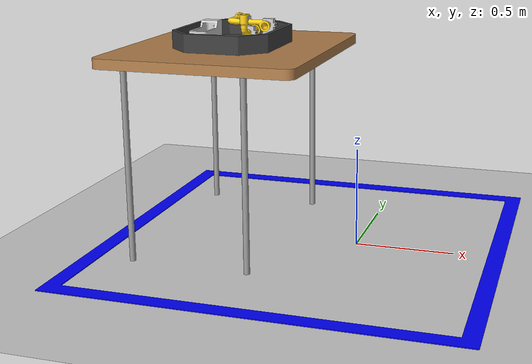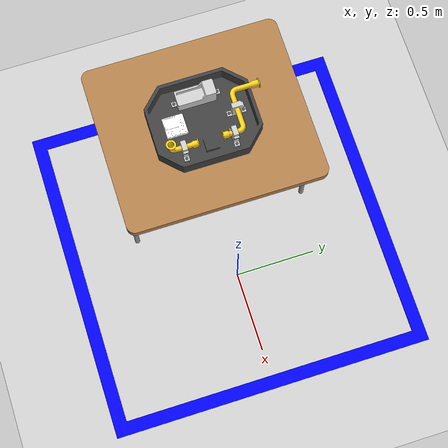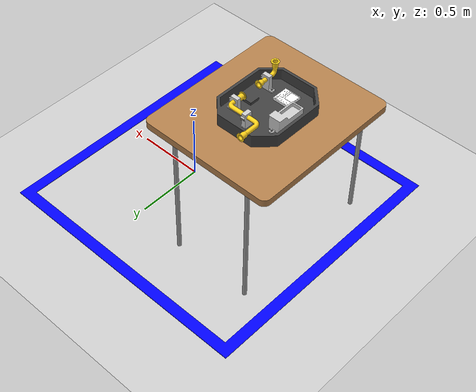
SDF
<sdf version="1.6">
 <world name="default">
  <light name="sun" type="directional">
   <pose>0 0 10 0 -0 0</pose>
   <diffuse>0.8 0.8 0.8 1</diffuse>
   <specular>0.2 0.2 0.2 1</specular>
   <attenuation>
    <range>1000</range>
    <constant>0.9</constant>
    <linear>0.01</linear>
    <quadratic>0.001</quadratic>
   </attenuation>
   <direction>-0.5 0.1 -0.9</direction>
  </light>
  <model name="ground_plane">
   <static>1</static>
   <link name="link">
    <collision name="collision">
     <geometry><plane><normal>0 0 1</normal><size>100 100</size></plane></geometry>
     <surface>
      <contact><collide_bitmask>65535</collide_bitmask></contact>
      <friction><ode><mu>100</mu><mu2>50</mu2></ode></friction>
     </surface>
    </collision>
    <visual name="visual">
     <cast_shadows>0</cast_shadows>
     <geometry><plane><normal>0 0 1</normal><size>100 100</size></plane></geometry>
     <material>
      <script><uri>file://media/materials/scripts/gazebo.material</uri><name>Gazebo/Grey</name></script>
     </material>
    </visual>
   </link>
  </model>
  <gravity>0 0 -9.8</gravity>
  <magnetic_field>6e-06 2.3e-05 -4.2e-05</magnetic_field>
  <atmosphere type="adiabatic"/>
  <physics name="default_physics" default="0" type="ode">
   <max_step_size>0.001</max_step_size>
   <real_time_factor>1</real_time_factor>
   <real_time_update_rate>1000</real_time_update_rate>
  </physics>
  <scene><ambient>0.4 0.4 0.4 1</ambient><background>0.7 0.7 0.7 1</background><shadows>1</shadows></scene>
  <audio><device>default</device></audio>
  <spherical_coordinates>
   <surface_model>EARTH_WGS84</surface_model>
   <latitude_deg>0</latitude_deg>
   <longitude_deg>0</longitude_deg>
   <elevation>0</elevation>
   <heading_deg>0</heading_deg>
  </spherical_coordinates>
  <model name="assembly_table">
   <static>1</static>
   <link name="assembly_table_link">
    <visual name="table_top">
     <geometry><mesh><uri>model://assembly_table/meshes/table_top.stl</uri></mesh></geometry>
     <material>
      <script><uri>file://media/materials/scripts/gazebo.material</uri><name>Gazebo/Wood</name></script>
     </material>
    </visual>
    <visual name="leg1">
     <geometry><mesh><uri>model://assembly_table/meshes/leg1.stl</uri></mesh></geometry>
     <material><ambient>0.6 0.6 0.6 1</ambient><diffuse>0.6 0.6 0.6 1</diffuse></material>
    </visual>
    <visual name="leg2">
     <geometry><mesh><uri>model://assembly_table/meshes/leg2.stl</uri></mesh></geometry>
     <material><ambient>0.6 0.6 0.6 1</ambient><diffuse>0.6 0.6 0.6 1</diffuse></material>
    </visual>
    <visual name="leg3">
     <geometry><mesh><uri>model://assembly_table/meshes/leg3.stl</uri></mesh></geometry>
     <material><ambient>0.6 0.6 0.6 1</ambient><diffuse>0.6 0.6 0.6 1</diffuse></material>
    </visual>
    <visual name="leg4">
     <geometry><mesh><uri>model://assembly_table/meshes/leg4.stl</uri></mesh></geometry>
     <material><ambient>0.6 0.6 0.6 1</ambient><diffuse>0.6 0.6 0.6 1</diffuse></material>
    </visual>
    <visual name="tape">
     <geometry><mesh><uri>model://assembly_table/meshes/tape_outline.stl</uri></mesh></geometry>
     <material><ambient>0 0 1 1</ambient><diffuse>0 0 1 1</diffuse></material>
    </visual>
    <collision name="collision">
     <geometry><mesh><uri>model://assembly_table/meshes/assembly_table_collision.stl</uri></mesh></geometry>
    </collision>
   </link>
   <pose>-0.25 0 0 0 -0 0</pose>
  </model>
  <model name="insert">
   <static>1</static>
   <allow_auto_disable>0</allow_auto_disable>
   <link name="insert_link">
    <visual name="base">
     <geometry><mesh><uri>model://assembly_insert/meshes/insert_base.stl</uri></mesh></geometry>
     <material><ambient>0.25 0.25 0.25 1</ambient><diffuse>0.25 0.25 0.25 1</diffuse></material>
    </visual>
    <visual name="mounts">
     <geometry><mesh><uri>model://assembly_insert/meshes/mounts.stl</uri></mesh></geometry>
     <material><ambient>0.8 0.8 0.8 1</ambient><diffuse>0.8 0.8 0.8 1</diffuse></material>
    </visual>
    <visual name="hardware">
     <geometry><mesh><uri>model://assembly_insert/meshes/hardware.stl</uri></mesh></geometry>
     <material><ambient>0.35 0.35 0.35 1</ambient><diffuse>0.35 0.35 0.35 1</diffuse></material>
    </visual>
    <visual name="pipe_1">
     <geometry><mesh><uri>model://assembly_insert/meshes/pipe_1.stl</uri></mesh></geometry>
     <material><ambient>1 0.82 0.1 1</ambient><diffuse>1 0.82 0.1 1</diffuse></material>
    </visual>
    <visual name="pipe_2">
     <geometry><mesh><uri>model://assembly_insert/meshes/pipe_2.stl</uri></mesh></geometry>
     <material><ambient>1 0.82 0.1 1</ambient><diffuse>1 0.82 0.1 1</diffuse></material>
    </visual>
    <visual name="screen">
     <geometry><mesh><uri>model://assembly_insert/meshes/screen.stl</uri></mesh></geometry>
     <material><ambient>1 1 1 1</ambient><diffuse>1 1 1 1</diffuse></material>
    </visual>
    <collision name="base_collision">
     <geometry><mesh><uri>model://assembly_insert/meshes/insert_collision.stl</uri></mesh></geometry>
     <surface>
      <contact><ode><max_vel>0</max_vel><min_depth>0.001</min_depth></ode></contact>
      <friction><ode><mu>0.15</mu><mu2>0.15</mu2></ode></friction>
     </surface>
    </collision>
   </link>
   <link name="regulator_contact">
    <collision name="regulator_contact">
     <geometry><mesh><uri>model://assembly_insert/meshes/regulator_contact.stl</uri></mesh></geometry>
     <surface><contact><ode><max_vel>0</max_vel><min_depth>0.001</min_depth></ode></contact></surface>
    </collision>
    <sensor name="regulator_contact_sensor" type="contact">
     <update_rate>10</update_rate>
     <contact><collision>regulator_contact</collision><topic>__default_topic__</topic></contact>
    </sensor>
   </link>
   <link name="battery_contact">
    <collision name="battery_contact">
     <geometry><mesh><uri>model://assembly_insert/meshes/battery_contact.stl</uri></mesh></geometry>
     <surface><contact><ode><max_vel>0</max_vel><min_depth>0.001</min_depth></ode></contact></surface>
    </collision>
    <sensor name="battery_contact_sensor" type="contact">
     <update_rate>10</update_rate>
     <contact><collision>battery_contact</collision><topic>__default_topic__</topic></contact>
    </sensor>
   </link>
   <link name="pump_contact">
    <collision name="pump_contact">
     <geometry><mesh><uri>model://assembly_insert/meshes/pump_contact.stl</uri></mesh></geometry>
     <surface><contact><ode><max_vel>0</max_vel><min_depth>0.001</min_depth></ode></contact></surface>
    </collision>
    <sensor name="pump_contact_sensor" type="contact">
     <update_rate>10</update_rate>
     <contact><collision>pump_contact</collision><topic>__default_topic__</topic></contact>
    </sensor>
   </link>
   <link name="sensor_contact">
    <collision name="sensor_contact">
     <geometry><mesh><uri>model://assembly_insert/meshes/sensor_contact.stl</uri></mesh></geometry>
     <surface><contact><ode><max_vel>0</max_vel><min_depth>0.001</min_depth></ode></contact></surface>
    </collision>
    <sensor name="sensor_contact_sensor" type="contact">
     <update_rate>10</update_rate>
     <contact><collision>sensor_contact</collision><topic>__default_topic__</topic></contact>
    </sensor>
   </link>
   <plugin name="assembly_lock_pump" filename="libassembly_lock_plugin.so">
    <assembly_part_type>pump</assembly_part_type>
   </plugin>
   <plugin name="assembly_lock_regulator" filename="libassembly_lock_plugin.so">
    <assembly_part_type>regulator</assembly_part_type>
   </plugin>
   <plugin name="assembly_lock_sensor" filename="libassembly_lock_plugin.so">
    <assembly_part_type>sensor</assembly_part_type>
   </plugin>
   <plugin name="assembly_lock_battery" filename="libassembly_lock_plugin.so">
    <assembly_part_type>battery</assembly_part_type>
   </plugin>
   <plugin name="assembly_state_publisher" filename="libassembly_state_publisher.so"/>
   <pose>-0.65 0 1.01 0 -0 0</pose>
  </model>
 </world>
</sdf>
